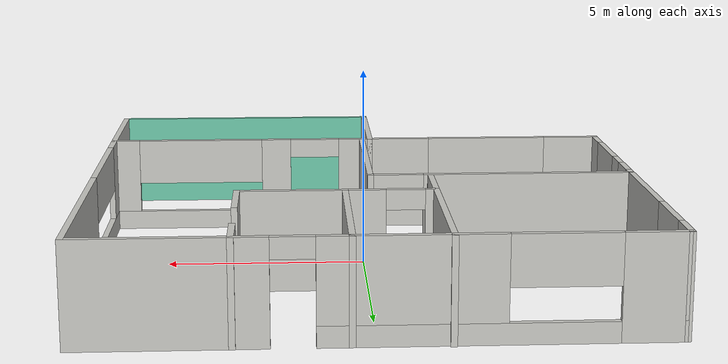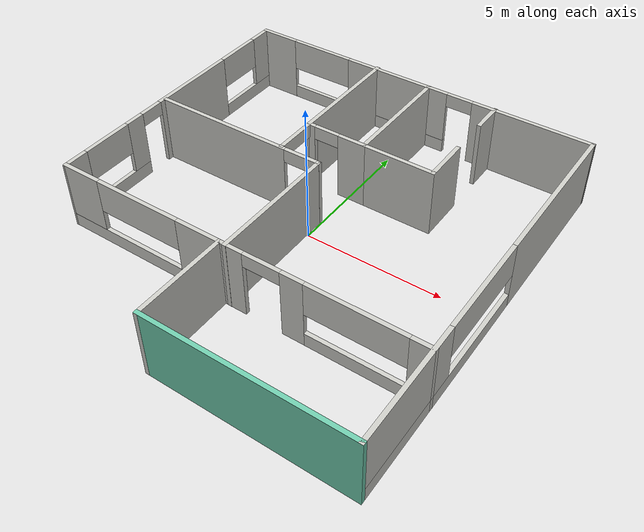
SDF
<?xml version='1.0'?>
<sdf version='1.7'>
  <model name='house'>
    <pose>-0.018282 -0.226201 0 0 -0 0</pose>
    <link name='Wall_0'>
      <pose>0.000126 6.8995 0 0 -0 0.002589</pose>
      <visual name='Wall_0_Visual_0'>
        <pose>-6.06036 0 1.25 0 -0 0</pose>
        <geometry>
          <box>
            <size>1.54188 0.15 2.5</size>
          </box>
        </geometry>
        <material>
          <script>
            <uri>file://media/materials/scripts/gazebo.material</uri>
            <name>Gazebo/CeilingTiled</name>
          </script>
          <ambient>0.996078 0.47451 0.0196078 1</ambient>
        </material>
        <meta>
          <layer>0</layer>
        </meta>
      </visual>
      <collision name='Wall_0_Collision_0'>
        <geometry>
          <box>
            <size>1.54188 0.15 2.5</size>
          </box>
        </geometry>
        <pose>-6.06036 0 1.25 0 -0 0</pose>
      </collision>
      <visual name='Wall_0_Visual_1'>
        <pose>4.58809 0 1.25 0 -0 0</pose>
        <geometry>
          <box>
            <size>4.48642 0.15 2.5</size>
          </box>
        </geometry>
        <material>
          <script>
            <uri>file://media/materials/scripts/gazebo.material</uri>
            <name>Gazebo/CeilingTiled</name>
          </script>
          <ambient>0.996078 0.47451 0.0196078 1</ambient>
        </material>
        <meta>
          <layer>0</layer>
        </meta>
      </visual>
      <collision name='Wall_0_Collision_1'>
        <geometry>
          <box>
            <size>4.48642 0.15 2.5</size>
          </box>
        </geometry>
        <pose>4.58809 0 1.25 0 -0 0</pose>
      </collision>
      <visual name='Wall_0_Visual_2'>
        <pose>-1.96819 0 0.25 0 -0 0</pose>
        <geometry>
          <box>
            <size>6.64243 0.15 0.5</size>
          </box>
        </geometry>
        <material>
          <script>
            <uri>file://media/materials/scripts/gazebo.material</uri>
            <name>Gazebo/CeilingTiled</name>
          </script>
          <ambient>0.996078 0.47451 0.0196078 1</ambient>
        </material>
        <meta>
          <layer>0</layer>
        </meta>
      </visual>
      <collision name='Wall_0_Collision_2'>
        <geometry>
          <box>
            <size>6.64243 0.15 0.5</size>
          </box>
        </geometry>
        <pose>-1.96819 0 0.25 0 -0 0</pose>
      </collision>
      <visual name='Wall_0_Visual_3'>
        <pose>-0.735676 0 1.5 0 -0 0</pose>
        <geometry>
          <box>
            <size>4.1774 0.15 2</size>
          </box>
        </geometry>
        <material>
          <script>
            <uri>file://media/materials/scripts/gazebo.material</uri>
            <name>Gazebo/CeilingTiled</name>
          </script>
          <ambient>0.996078 0.47451 0.0196078 1</ambient>
        </material>
        <meta>
          <layer>0</layer>
        </meta>
      </visual>
      <collision name='Wall_0_Collision_3'>
        <geometry>
          <box>
            <size>4.1774 0.15 2</size>
          </box>
        </geometry>
        <pose>-0.735676 0 1.5 0 -0 0</pose>
      </collision>
      <visual name='Wall_0_Visual_4'>
        <pose>-4.05689 0 1.9 0 -0 0</pose>
        <geometry>
          <box>
            <size>2.46504 0.15 1.2</size>
          </box>
        </geometry>
        <material>
          <script>
            <uri>file://media/materials/scripts/gazebo.material</uri>
            <name>Gazebo/CeilingTiled</name>
          </script>
          <ambient>0.996078 0.47451 0.0196078 1</ambient>
        </material>
        <meta>
          <layer>0</layer>
        </meta>
      </visual>
      <collision name='Wall_0_Collision_4'>
        <geometry>
          <box>
            <size>2.46504 0.15 1.2</size>
          </box>
        </geometry>
        <pose>-4.05689 0 1.9 0 -0 0</pose>
      </collision>
      <visual name='Wall_0_Visual_5'>
        <pose>1.84895 0 2.25 0 -0 0</pose>
        <geometry>
          <box>
            <size>0.991851 0.15 0.5</size>
          </box>
        </geometry>
        <material>
          <script>
            <uri>file://media/materials/scripts/gazebo.material</uri>
            <name>Gazebo/CeilingTiled</name>
          </script>
          <ambient>0.996078 0.47451 0.0196078 1</ambient>
        </material>
        <meta>
          <layer>0</layer>
        </meta>
      </visual>
      <collision name='Wall_0_Collision_5'>
        <geometry>
          <box>
            <size>0.991851 0.15 0.5</size>
          </box>
        </geometry>
        <pose>1.84895 0 2.25 0 -0 0</pose>
      </collision>
    </link>
    <link name='Wall_1'>
      <pose>6.7564 -0.025497 0 0 -0 -1.5708</pose>
      <visual name='Wall_1_Visual_0'>
        <pose>-4.04222 0 1.25 0 -0 0</pose>
        <geometry>
          <box>
            <size>5.91557 0.15 2.5</size>
          </box>
        </geometry>
        <material>
          <script>
            <uri>file://media/materials/scripts/gazebo.material</uri>
            <name>Gazebo/CeilingTiled</name>
          </script>
          <ambient>0.760784 0.662745 0.627451 1</ambient>
        </material>
        <meta>
          <layer>0</layer>
        </meta>
      </visual>
      <collision name='Wall_1_Collision_0'>
        <geometry>
          <box>
            <size>5.91557 0.15 2.5</size>
          </box>
        </geometry>
        <pose>-4.04222 0 1.25 0 -0 0</pose>
      </collision>
      <visual name='Wall_1_Visual_1'>
        <pose>2.95778 0 0.25 0 -0 0</pose>
        <geometry>
          <box>
            <size>8.08443 0.15 0.5</size>
          </box>
        </geometry>
        <material>
          <script>
            <uri>file://media/materials/scripts/gazebo.material</uri>
            <name>Gazebo/CeilingTiled</name>
          </script>
          <ambient>0.760784 0.662745 0.627451 1</ambient>
        </material>
        <meta>
          <layer>0</layer>
        </meta>
      </visual>
      <collision name='Wall_1_Collision_1'>
        <geometry>
          <box>
            <size>8.08443 0.15 0.5</size>
          </box>
        </geometry>
        <pose>2.95778 0 0.25 0 -0 0</pose>
      </collision>
      <visual name='Wall_1_Visual_2'>
        <pose>4.82658 0 1.5 0 -0 0</pose>
        <geometry>
          <box>
            <size>4.34685 0.15 2</size>
          </box>
        </geometry>
        <material>
          <script>
            <uri>file://media/materials/scripts/gazebo.material</uri>
            <name>Gazebo/CeilingTiled</name>
          </script>
          <ambient>0.760784 0.662745 0.627451 1</ambient>
        </material>
        <meta>
          <layer>0</layer>
        </meta>
      </visual>
      <collision name='Wall_1_Collision_2'>
        <geometry>
          <box>
            <size>4.34685 0.15 2</size>
          </box>
        </geometry>
        <pose>4.82658 0 1.5 0 -0 0</pose>
      </collision>
      <visual name='Wall_1_Visual_3'>
        <pose>0.78436 0 1.9 0 -0 0</pose>
        <geometry>
          <box>
            <size>3.73759 0.15 1.2</size>
          </box>
        </geometry>
        <material>
          <script>
            <uri>file://media/materials/scripts/gazebo.material</uri>
            <name>Gazebo/CeilingTiled</name>
          </script>
          <ambient>0.760784 0.662745 0.627451 1</ambient>
        </material>
        <meta>
          <layer>0</layer>
        </meta>
      </visual>
      <collision name='Wall_1_Collision_3'>
        <geometry>
          <box>
            <size>3.73759 0.15 1.2</size>
          </box>
        </geometry>
        <pose>0.78436 0 1.9 0 -0 0</pose>
      </collision>
    </link>
    <link name='Wall_11'>
      <pose>-3.41085 1.02064 0 0 -0 0.002657</pose>
      <visual name='Wall_11_Visual_0'>
        <pose>-0.703414 0 1.25 0 -0 0</pose>
        <geometry>
          <box>
            <size>5.32652 0.15 2.5</size>
          </box>
        </geometry>
        <material>
          <script>
            <uri>file://media/materials/scripts/gazebo.material</uri>
            <name>Gazebo/CeilingTiled</name>
          </script>
          <ambient>0.996078 0.47451 0.0196078 1</ambient>
        </material>
        <meta>
          <layer>0</layer>
        </meta>
      </visual>
      <collision name='Wall_11_Collision_0'>
        <geometry>
          <box>
            <size>5.32652 0.15 2.5</size>
          </box>
        </geometry>
        <pose>-0.703414 0 1.25 0 -0 0</pose>
      </collision>
      <visual name='Wall_11_Visual_1'>
        <pose>3.28832 0 1.25 0 -0 0</pose>
        <geometry>
          <box>
            <size>0.156697 0.15 2.5</size>
          </box>
        </geometry>
        <material>
          <script>
            <uri>file://media/materials/scripts/gazebo.material</uri>
            <name>Gazebo/CeilingTiled</name>
          </script>
          <ambient>0.996078 0.47451 0.0196078 1</ambient>
        </material>
        <meta>
          <layer>0</layer>
        </meta>
      </visual>
      <collision name='Wall_11_Collision_1'>
        <geometry>
          <box>
            <size>0.156697 0.15 2.5</size>
          </box>
        </geometry>
        <pose>3.28832 0 1.25 0 -0 0</pose>
      </collision>
      <visual name='Wall_11_Visual_2'>
        <pose>2.58491 0 2.25 0 -0 0</pose>
        <geometry>
          <box>
            <size>1.25013 0.15 0.5</size>
          </box>
        </geometry>
        <material>
          <script>
            <uri>file://media/materials/scripts/gazebo.material</uri>
            <name>Gazebo/CeilingTiled</name>
          </script>
          <ambient>0.996078 0.47451 0.0196078 1</ambient>
        </material>
        <meta>
          <layer>0</layer>
        </meta>
      </visual>
      <collision name='Wall_11_Collision_2'>
        <geometry>
          <box>
            <size>1.25013 0.15 0.5</size>
          </box>
        </geometry>
        <pose>2.58491 0 2.25 0 -0 0</pose>
      </collision>
    </link>
    <link name='Wall_14'>
      <collision name='Wall_14_Collision'>
        <geometry>
          <box>
            <size>4.75 0.15 2.5</size>
          </box>
        </geometry>
        <pose>0 0 1.25 0 -0 0</pose>
      </collision>
      <visual name='Wall_14_Visual'>
        <pose>0 0 1.25 0 -0 0</pose>
        <geometry>
          <box>
            <size>4.75 0.15 2.5</size>
          </box>
        </geometry>
        <material>
          <script>
            <uri>file://media/materials/scripts/gazebo.material</uri>
            <name>Gazebo/CeilingTiled</name>
          </script>
          <ambient>1 0.764706 0.305882 1</ambient>
        </material>
        <meta>
          <layer>0</layer>
        </meta>
      </visual>
      <pose>-0.119598 -1.3056 0 0 -0 -1.5708</pose>
    </link>
    <link name='Wall_16'>
      <pose>-1.62616 4.0255 0 0 -0 -1.5708</pose>
      <visual name='Wall_16_Visual_0'>
        <pose>-0.787699 0 1.25 0 -0 0</pose>
        <geometry>
          <box>
            <size>4.4246 0.15 2.5</size>
          </box>
        </geometry>
        <material>
          <script>
            <uri>file://media/materials/scripts/gazebo.material</uri>
            <name>Gazebo/CeilingTiled</name>
          </script>
          <ambient>0.760784 0.662745 0.627451 1</ambient>
        </material>
        <meta>
          <layer>0</layer>
        </meta>
      </visual>
      <collision name='Wall_16_Collision_0'>
        <geometry>
          <box>
            <size>4.4246 0.15 2.5</size>
          </box>
        </geometry>
        <pose>-0.787699 0 1.25 0 -0 0</pose>
      </collision>
      <visual name='Wall_16_Visual_1'>
        <pose>2.95143 0 1.25 0 -0 0</pose>
        <geometry>
          <box>
            <size>0.097134 0.15 2.5</size>
          </box>
        </geometry>
        <material>
          <script>
            <uri>file://media/materials/scripts/gazebo.material</uri>
            <name>Gazebo/CeilingTiled</name>
          </script>
          <ambient>0.760784 0.662745 0.627451 1</ambient>
        </material>
        <meta>
          <layer>0</layer>
        </meta>
      </visual>
      <collision name='Wall_16_Collision_1'>
        <geometry>
          <box>
            <size>0.097134 0.15 2.5</size>
          </box>
        </geometry>
        <pose>2.95143 0 1.25 0 -0 0</pose>
      </collision>
      <visual name='Wall_16_Visual_2'>
        <pose>2.16373 0 2.25 0 -0 0</pose>
        <geometry>
          <box>
            <size>1.47826 0.15 0.5</size>
          </box>
        </geometry>
        <material>
          <script>
            <uri>file://media/materials/scripts/gazebo.material</uri>
            <name>Gazebo/CeilingTiled</name>
          </script>
          <ambient>0.760784 0.662745 0.627451 1</ambient>
        </material>
        <meta>
          <layer>0</layer>
        </meta>
      </visual>
      <collision name='Wall_16_Collision_2'>
        <geometry>
          <box>
            <size>1.47826 0.15 0.5</size>
          </box>
        </geometry>
        <pose>2.16373 0 2.25 0 -0 0</pose>
      </collision>
    </link>
    <link name='Wall_18'>
      <pose>-0.478754 2.6482 0 0 -0 3.14159</pose>
      <visual name='Wall_18_Visual_0'>
        <pose>-0.595451 0 1.25 0 -0 0</pose>
        <geometry>
          <box>
            <size>1.0591 0.15 2.5</size>
          </box>
        </geometry>
        <material>
          <script>
            <uri>file://media/materials/scripts/gazebo.material</uri>
            <name>Gazebo/CeilingTiled</name>
          </script>
          <ambient>0.435294 0.796078 0.67451 1</ambient>
        </material>
        <meta>
          <layer>0</layer>
        </meta>
      </visual>
      <collision name='Wall_18_Collision_0'>
        <geometry>
          <box>
            <size>1.0591 0.15 2.5</size>
          </box>
        </geometry>
        <pose>-0.595451 0 1.25 0 -0 0</pose>
      </collision>
      <visual name='Wall_18_Visual_1'>
        <pose>1.00268 0 1.25 0 -0 0</pose>
        <geometry>
          <box>
            <size>0.244641 0.15 2.5</size>
          </box>
        </geometry>
        <material>
          <script>
            <uri>file://media/materials/scripts/gazebo.material</uri>
            <name>Gazebo/CeilingTiled</name>
          </script>
          <ambient>0.435294 0.796078 0.67451 1</ambient>
        </material>
        <meta>
          <layer>0</layer>
        </meta>
      </visual>
      <collision name='Wall_18_Collision_1'>
        <geometry>
          <box>
            <size>0.244641 0.15 2.5</size>
          </box>
        </geometry>
        <pose>1.00268 0 1.25 0 -0 0</pose>
      </collision>
      <visual name='Wall_18_Visual_2'>
        <pose>0.407228 0 2.25 0 -0 0</pose>
        <geometry>
          <box>
            <size>0.946261 0.15 0.5</size>
          </box>
        </geometry>
        <material>
          <script>
            <uri>file://media/materials/scripts/gazebo.material</uri>
            <name>Gazebo/CeilingTiled</name>
          </script>
          <ambient>0.435294 0.796078 0.67451 1</ambient>
        </material>
        <meta>
          <layer>0</layer>
        </meta>
      </visual>
      <collision name='Wall_18_Collision_2'>
        <geometry>
          <box>
            <size>0.946261 0.15 0.5</size>
          </box>
        </geometry>
        <pose>0.407228 0 2.25 0 -0 0</pose>
      </collision>
    </link>
    <link name='Wall_20'>
      <collision name='Wall_20_Collision'>
        <geometry>
          <box>
            <size>4.40603 0.15 2.5</size>
          </box>
        </geometry>
        <pose>0 0 1.25 0 -0 0</pose>
      </collision>
      <visual name='Wall_20_Visual'>
        <pose>0 0 1.25 0 -0 0</pose>
        <geometry>
          <box>
            <size>4.40603 0.15 2.5</size>
          </box>
        </geometry>
        <material>
          <script>
            <uri>file://media/materials/scripts/gazebo.material</uri>
            <name>Gazebo/CeilingTiled</name>
          </script>
          <ambient>0.996078 0.47451 0.0196078 1</ambient>
        </material>
        <meta>
          <layer>0</layer>
        </meta>
      </visual>
      <pose>0.571246 4.77622 0 0 -0 -1.5708</pose>
    </link>
    <link name='Wall_21'>
      <collision name='Wall_21_Collision'>
        <geometry>
          <box>
            <size>2.75 0.15 2.5</size>
          </box>
        </geometry>
        <pose>0 0 1.25 0 -0 0</pose>
      </collision>
      <visual name='Wall_21_Visual'>
        <pose>0 0 1.25 0 -0 0</pose>
        <geometry>
          <box>
            <size>2.75 0.15 2.5</size>
          </box>
        </geometry>
        <material>
          <script>
            <uri>file://media/materials/scripts/gazebo.material</uri>
            <name>Gazebo/CeilingTiled</name>
          </script>
          <ambient>0.996078 0.47451 0.0196078 1</ambient>
        </material>
        <meta>
          <layer>0</layer>
        </meta>
      </visual>
      <pose>1.87125 2.6482 0 0 -0 0</pose>
    </link>
    <link name='Wall_22'>
      <collision name='Wall_22_Collision'>
        <geometry>
          <box>
            <size>1.75 0.15 2.5</size>
          </box>
        </geometry>
        <pose>0 0 1.25 0 -0 0</pose>
      </collision>
      <visual name='Wall_22_Visual'>
        <pose>0 0 1.25 0 -0 0</pose>
        <geometry>
          <box>
            <size>1.75 0.15 2.5</size>
          </box>
        </geometry>
        <material>
          <script>
            <uri>file://media/materials/scripts/gazebo.material</uri>
            <name>Gazebo/CeilingTiled</name>
          </script>
          <ambient>0.760784 0.662745 0.627451 1</ambient>
        </material>
        <meta>
          <layer>0</layer>
        </meta>
      </visual>
      <pose>3.17125 3.44821 0 0 -0 1.5708</pose>
    </link>
    <link name='Wall_25'>
      <collision name='Wall_25_Collision'>
        <geometry>
          <box>
            <size>1.25 0.15 2.5</size>
          </box>
        </geometry>
        <pose>0 0 1.25 0 -0 0</pose>
      </collision>
      <visual name='Wall_25_Visual'>
        <pose>0 0 1.25 0 -0 0</pose>
        <geometry>
          <box>
            <size>1.25 0.15 2.5</size>
          </box>
        </geometry>
        <material>
          <script>
            <uri>file://media/materials/scripts/gazebo.material</uri>
            <name>Gazebo/CeilingTiled</name>
          </script>
          <ambient>0.435294 0.796078 0.67451 1</ambient>
        </material>
        <meta>
          <layer>0</layer>
        </meta>
      </visual>
      <pose>3.17029 6.38306 0 0 -0 -1.5708</pose>
    </link>
    <link name='Wall_3'>
      <collision name='Wall_3_Collision'>
        <geometry>
          <box>
            <size>7.25 0.15 2.5</size>
          </box>
        </geometry>
        <pose>0 0 1.25 0 -0 0</pose>
      </collision>
      <visual name='Wall_3_Visual'>
        <pose>0 0 1.25 0 -0 0</pose>
        <geometry>
          <box>
            <size>7.25 0.15 2.5</size>
          </box>
        </geometry>
        <material>
          <script>
            <uri>file://media/materials/scripts/gazebo.material</uri>
            <name>Gazebo/Grey</name>
          </script>
          <ambient>0.435294 0.796078 0.67451 1</ambient>
        </material>
        <meta>
          <layer>0</layer>
        </meta>
      </visual>
      <pose>3.2064 -6.9505 0 0 -0 3.14159</pose>
    </link>
    <link name='Wall_4'>
      <collision name='Wall_4_Collision'>
        <geometry>
          <box>
            <size>3.5 0.15 2.5</size>
          </box>
        </geometry>
        <pose>0 0 1.25 0 -0 0</pose>
      </collision>
      <visual name='Wall_4_Visual'>
        <pose>0 0 1.25 0 -0 0</pose>
        <geometry>
          <box>
            <size>3.5 0.15 2.5</size>
          </box>
        </geometry>
        <material>
          <script>
            <uri>file://media/materials/scripts/gazebo.material</uri>
            <name>Gazebo/CeilingTiled</name>
          </script>
          <ambient>0.435294 0.796078 0.67451 1</ambient>
        </material>
        <meta>
          <layer>0</layer>
        </meta>
      </visual>
      <pose>-0.343599 -5.2755 0 0 -0 1.5708</pose>
    </link>
    <link name='Wall_6'>
      <pose>3.2064 -3.6005 0 0 -0 0</pose>
      <visual name='Wall_6_Visual_0'>
        <pose>-3.15268 0 1.25 0 -0 0</pose>
        <geometry>
          <box>
            <size>0.944631 0.15 2.5</size>
          </box>
        </geometry>
        <material>
          <script>
            <uri>file://media/materials/scripts/gazebo.material</uri>
            <name>Gazebo/CeilingTiled</name>
          </script>
          <ambient>0.996078 0.47451 0.0196078 1</ambient>
        </material>
        <meta>
          <layer>0</layer>
        </meta>
      </visual>
      <collision name='Wall_6_Collision_0'>
        <geometry>
          <box>
            <size>0.944631 0.15 2.5</size>
          </box>
        </geometry>
        <pose>-3.15268 0 1.25 0 -0 0</pose>
      </collision>
      <visual name='Wall_6_Visual_1'>
        <pose>-0.939808 0 1.25 0 -0 0</pose>
        <geometry>
          <box>
            <size>0.802161 0.15 2.5</size>
          </box>
        </geometry>
        <material>
          <script>
            <uri>file://media/materials/scripts/gazebo.material</uri>
            <name>Gazebo/CeilingTiled</name>
          </script>
          <ambient>0.996078 0.47451 0.0196078 1</ambient>
        </material>
        <meta>
          <layer>0</layer>
        </meta>
      </visual>
      <collision name='Wall_6_Collision_1'>
        <geometry>
          <box>
            <size>0.802161 0.15 2.5</size>
          </box>
        </geometry>
        <pose>-0.939808 0 1.25 0 -0 0</pose>
      </collision>
      <visual name='Wall_6_Visual_2'>
        <pose>1.54314 0 0.25 0 -0 0</pose>
        <geometry>
          <box>
            <size>4.16373 0.15 0.5</size>
          </box>
        </geometry>
        <material>
          <script>
            <uri>file://media/materials/scripts/gazebo.material</uri>
            <name>Gazebo/CeilingTiled</name>
          </script>
          <ambient>0.996078 0.47451 0.0196078 1</ambient>
        </material>
        <meta>
          <layer>0</layer>
        </meta>
      </visual>
      <collision name='Wall_6_Collision_2'>
        <geometry>
          <box>
            <size>4.16373 0.15 0.5</size>
          </box>
        </geometry>
        <pose>1.54314 0 0.25 0 -0 0</pose>
      </collision>
      <visual name='Wall_6_Visual_3'>
        <pose>3.23845 0 1.5 0 -0 0</pose>
        <geometry>
          <box>
            <size>0.773099 0.15 2</size>
          </box>
        </geometry>
        <material>
          <script>
            <uri>file://media/materials/scripts/gazebo.material</uri>
            <name>Gazebo/CeilingTiled</name>
          </script>
          <ambient>0.996078 0.47451 0.0196078 1</ambient>
        </material>
        <meta>
          <layer>0</layer>
        </meta>
      </visual>
      <collision name='Wall_6_Collision_3'>
        <geometry>
          <box>
            <size>0.773099 0.15 2</size>
          </box>
        </geometry>
        <pose>3.23845 0 1.5 0 -0 0</pose>
      </collision>
      <visual name='Wall_6_Visual_4'>
        <pose>1.15659 0 1.9 0 -0 0</pose>
        <geometry>
          <box>
            <size>3.39063 0.15 1.2</size>
          </box>
        </geometry>
        <material>
          <script>
            <uri>file://media/materials/scripts/gazebo.material</uri>
            <name>Gazebo/CeilingTiled</name>
          </script>
          <ambient>0.996078 0.47451 0.0196078 1</ambient>
        </material>
        <meta>
          <layer>0</layer>
        </meta>
      </visual>
      <collision name='Wall_6_Collision_4'>
        <geometry>
          <box>
            <size>3.39063 0.15 1.2</size>
          </box>
        </geometry>
        <pose>1.15659 0 1.9 0 -0 0</pose>
      </collision>
      <visual name='Wall_6_Visual_5'>
        <pose>-2.01063 0 2.25 0 -0 0</pose>
        <geometry>
          <box>
            <size>1.33948 0.15 0.5</size>
          </box>
        </geometry>
        <material>
          <script>
            <uri>file://media/materials/scripts/gazebo.material</uri>
            <name>Gazebo/CeilingTiled</name>
          </script>
          <ambient>0.996078 0.47451 0.0196078 1</ambient>
        </material>
        <meta>
          <layer>0</layer>
        </meta>
      </visual>
      <collision name='Wall_6_Collision_5'>
        <geometry>
          <box>
            <size>1.33948 0.15 0.5</size>
          </box>
        </geometry>
        <pose>-2.01063 0 2.25 0 -0 0</pose>
      </collision>
    </link>
    <link name='Wall_8'>
      <pose>-3.5186 -3.6005 0 0 -0 3.14159</pose>
      <visual name='Wall_8_Visual_0'>
        <pose>-2.38872 0 1.25 0 -0 0</pose>
        <geometry>
          <box>
            <size>1.72255 0.15 2.5</size>
          </box>
        </geometry>
        <material>
          <script>
            <uri>file://media/materials/scripts/gazebo.material</uri>
            <name>Gazebo/CeilingTiled</name>
          </script>
          <ambient>0.996078 0.47451 0.0196078 1</ambient>
        </material>
        <meta>
          <layer>0</layer>
        </meta>
      </visual>
      <collision name='Wall_8_Collision_0'>
        <geometry>
          <box>
            <size>1.72255 0.15 2.5</size>
          </box>
        </geometry>
        <pose>-2.38872 0 1.25 0 -0 0</pose>
      </collision>
      <visual name='Wall_8_Visual_1'>
        <pose>0.861275 0 0.25 0 -0 0</pose>
        <geometry>
          <box>
            <size>4.77745 0.15 0.5</size>
          </box>
        </geometry>
        <material>
          <script>
            <uri>file://media/materials/scripts/gazebo.material</uri>
            <name>Gazebo/CeilingTiled</name>
          </script>
          <ambient>0.996078 0.47451 0.0196078 1</ambient>
        </material>
        <meta>
          <layer>0</layer>
        </meta>
      </visual>
      <collision name='Wall_8_Collision_1'>
        <geometry>
          <box>
            <size>4.77745 0.15 0.5</size>
          </box>
        </geometry>
        <pose>0.861275 0 0.25 0 -0 0</pose>
      </collision>
      <visual name='Wall_8_Visual_2'>
        <pose>2.4872 0 1.5 0 -0 0</pose>
        <geometry>
          <box>
            <size>1.52561 0.15 2</size>
          </box>
        </geometry>
        <material>
          <script>
            <uri>file://media/materials/scripts/gazebo.material</uri>
            <name>Gazebo/CeilingTiled</name>
          </script>
          <ambient>0.996078 0.47451 0.0196078 1</ambient>
        </material>
        <meta>
          <layer>0</layer>
        </meta>
      </visual>
      <collision name='Wall_8_Collision_2'>
        <geometry>
          <box>
            <size>1.52561 0.15 2</size>
          </box>
        </geometry>
        <pose>2.4872 0 1.5 0 -0 0</pose>
      </collision>
      <visual name='Wall_8_Visual_3'>
        <pose>0.098473 0 1.9 0 -0 0</pose>
        <geometry>
          <box>
            <size>3.25184 0.15 1.2</size>
          </box>
        </geometry>
        <material>
          <script>
            <uri>file://media/materials/scripts/gazebo.material</uri>
            <name>Gazebo/CeilingTiled</name>
          </script>
          <ambient>0.996078 0.47451 0.0196078 1</ambient>
        </material>
        <meta>
          <layer>0</layer>
        </meta>
      </visual>
      <collision name='Wall_8_Collision_3'>
        <geometry>
          <box>
            <size>3.25184 0.15 1.2</size>
          </box>
        </geometry>
        <pose>0.098473 0 1.9 0 -0 0</pose>
      </collision>
    </link>
    <link name='Wall_9'>
      <pose>-6.72487 1.64076 0 0 -0 1.57676</pose>
      <visual name='Wall_9_Visual_0'>
        <pose>-4.85339 0 1.25 0 -0 0</pose>
        <geometry>
          <box>
            <size>0.925913 0.15 2.5</size>
          </box>
        </geometry>
        <material>
          <script>
            <uri>file://media/materials/scripts/gazebo.material</uri>
            <name>Gazebo/CeilingTiled</name>
          </script>
          <ambient>0.760784 0.662745 0.627451 1</ambient>
        </material>
        <meta>
          <layer>0</layer>
        </meta>
      </visual>
      <collision name='Wall_9_Collision_0'>
        <geometry>
          <box>
            <size>0.925913 0.15 2.5</size>
          </box>
        </geometry>
        <pose>-4.85339 0 1.25 0 -0 0</pose>
      </collision>
      <visual name='Wall_9_Visual_1'>
        <pose>0.824172 0 1.25 0 -0 0</pose>
        <geometry>
          <box>
            <size>3.45139 0.15 2.5</size>
          </box>
        </geometry>
        <material>
          <script>
            <uri>file://media/materials/scripts/gazebo.material</uri>
            <name>Gazebo/CeilingTiled</name>
          </script>
          <ambient>0.760784 0.662745 0.627451 1</ambient>
        </material>
        <meta>
          <layer>0</layer>
        </meta>
      </visual>
      <collision name='Wall_9_Collision_1'>
        <geometry>
          <box>
            <size>3.45139 0.15 2.5</size>
          </box>
        </geometry>
        <pose>0.824172 0 1.25 0 -0 0</pose>
      </collision>
      <visual name='Wall_9_Visual_2'>
        <pose>-3.09598 0 0.25 0 -0 0</pose>
        <geometry>
          <box>
            <size>2.58891 0.15 0.5</size>
          </box>
        </geometry>
        <material>
          <script>
            <uri>file://media/materials/scripts/gazebo.material</uri>
            <name>Gazebo/CeilingTiled</name>
          </script>
          <ambient>0.760784 0.662745 0.627451 1</ambient>
        </material>
        <meta>
          <layer>0</layer>
        </meta>
      </visual>
      <collision name='Wall_9_Collision_2'>
        <geometry>
          <box>
            <size>2.58891 0.15 0.5</size>
          </box>
        </geometry>
        <pose>-3.09598 0 0.25 0 -0 0</pose>
      </collision>
      <visual name='Wall_9_Visual_3'>
        <pose>3.93311 0 0.25 0 -0 0</pose>
        <geometry>
          <box>
            <size>2.76648 0.15 0.5</size>
          </box>
        </geometry>
        <material>
          <script>
            <uri>file://media/materials/scripts/gazebo.material</uri>
            <name>Gazebo/CeilingTiled</name>
          </script>
          <ambient>0.760784 0.662745 0.627451 1</ambient>
        </material>
        <meta>
          <layer>0</layer>
        </meta>
      </visual>
      <collision name='Wall_9_Collision_3'>
        <geometry>
          <box>
            <size>2.76648 0.15 0.5</size>
          </box>
        </geometry>
        <pose>3.93311 0 0.25 0 -0 0</pose>
      </collision>
      <visual name='Wall_9_Visual_4'>
        <pose>-2.16364 0 1.5 0 -0 0</pose>
        <geometry>
          <box>
            <size>0.724233 0.15 2</size>
          </box>
        </geometry>
        <material>
          <script>
            <uri>file://media/materials/scripts/gazebo.material</uri>
            <name>Gazebo/CeilingTiled</name>
          </script>
          <ambient>0.760784 0.662745 0.627451 1</ambient>
        </material>
        <meta>
          <layer>0</layer>
        </meta>
      </visual>
      <collision name='Wall_9_Collision_4'>
        <geometry>
          <box>
            <size>0.724233 0.15 2</size>
          </box>
        </geometry>
        <pose>-2.16364 0 1.5 0 -0 0</pose>
      </collision>
      <visual name='Wall_9_Visual_5'>
        <pose>-2.16364 0 1.5 0 -0 0</pose>
        <geometry>
          <box>
            <size>0.724233 0.15 2</size>
          </box>
        </geometry>
        <material>
          <script>
            <uri>file://media/materials/scripts/gazebo.material</uri>
            <name>Gazebo/CeilingTiled</name>
          </script>
          <ambient>0.760784 0.662745 0.627451 1</ambient>
        </material>
        <meta>
          <layer>0</layer>
        </meta>
      </visual>
      <collision name='Wall_9_Collision_5'>
        <geometry>
          <box>
            <size>0.724233 0.15 2</size>
          </box>
        </geometry>
        <pose>-2.16364 0 1.5 0 -0 0</pose>
      </collision>
      <visual name='Wall_9_Visual_6'>
        <pose>4.83082 0 1.5 0 -0 0</pose>
        <geometry>
          <box>
            <size>0.971056 0.15 2</size>
          </box>
        </geometry>
        <material>
          <script>
            <uri>file://media/materials/scripts/gazebo.material</uri>
            <name>Gazebo/CeilingTiled</name>
          </script>
          <ambient>0.760784 0.662745 0.627451 1</ambient>
        </material>
        <meta>
          <layer>0</layer>
        </meta>
      </visual>
      <collision name='Wall_9_Collision_6'>
        <geometry>
          <box>
            <size>0.971056 0.15 2</size>
          </box>
        </geometry>
        <pose>4.83082 0 1.5 0 -0 0</pose>
      </collision>
      <visual name='Wall_9_Visual_7'>
        <pose>-3.4581 0 1.9 0 -0 0</pose>
        <geometry>
          <box>
            <size>1.86468 0.15 1.2</size>
          </box>
        </geometry>
        <material>
          <script>
            <uri>file://media/materials/scripts/gazebo.material</uri>
            <name>Gazebo/CeilingTiled</name>
          </script>
          <ambient>0.760784 0.662745 0.627451 1</ambient>
        </material>
        <meta>
          <layer>0</layer>
        </meta>
      </visual>
      <collision name='Wall_9_Collision_7'>
        <geometry>
          <box>
            <size>1.86468 0.15 1.2</size>
          </box>
        </geometry>
        <pose>-3.4581 0 1.9 0 -0 0</pose>
      </collision>
      <visual name='Wall_9_Visual_8'>
        <pose>3.44758 0 1.9 0 -0 0</pose>
        <geometry>
          <box>
            <size>1.79543 0.15 1.2</size>
          </box>
        </geometry>
        <material>
          <script>
            <uri>file://media/materials/scripts/gazebo.material</uri>
            <name>Gazebo/CeilingTiled</name>
          </script>
          <ambient>0.760784 0.662745 0.627451 1</ambient>
        </material>
        <meta>
          <layer>0</layer>
        </meta>
      </visual>
      <collision name='Wall_9_Collision_8'>
        <geometry>
          <box>
            <size>1.79543 0.15 1.2</size>
          </box>
        </geometry>
        <pose>3.44758 0 1.9 0 -0 0</pose>
      </collision>
      <visual name='Wall_9_Visual_9'>
        <pose>-1.35152 0 2.25 0 -0 0</pose>
        <geometry>
          <box>
            <size>0.9 0.15 0.5</size>
          </box>
        </geometry>
        <material>
          <script>
            <uri>file://media/materials/scripts/gazebo.material</uri>
            <name>Gazebo/CeilingTiled</name>
          </script>
          <ambient>0.760784 0.662745 0.627451 1</ambient>
        </material>
        <meta>
          <layer>0</layer>
        </meta>
      </visual>
      <collision name='Wall_9_Collision_9'>
        <geometry>
          <box>
            <size>0.9 0.15 0.5</size>
          </box>
        </geometry>
        <pose>-1.35152 0 2.25 0 -0 0</pose>
      </collision>
      <visual name='Wall_9_Visual_10'>
        <pose>-1.35152 0 2.25 0 -0 0</pose>
        <geometry>
          <box>
            <size>0.9 0.15 0.5</size>
          </box>
        </geometry>
        <material>
          <script>
            <uri>file://media/materials/scripts/gazebo.material</uri>
            <name>Gazebo/CeilingTiled</name>
          </script>
          <ambient>0.760784 0.662745 0.627451 1</ambient>
        </material>
        <meta>
          <layer>0</layer>
        </meta>
      </visual>
      <collision name='Wall_9_Collision_10'>
        <geometry>
          <box>
            <size>0.9 0.15 0.5</size>
          </box>
        </geometry>
        <pose>-1.35152 0 2.25 0 -0 0</pose>
      </collision>
    </link>
    <static>1</static>
  </model>
</sdf>
